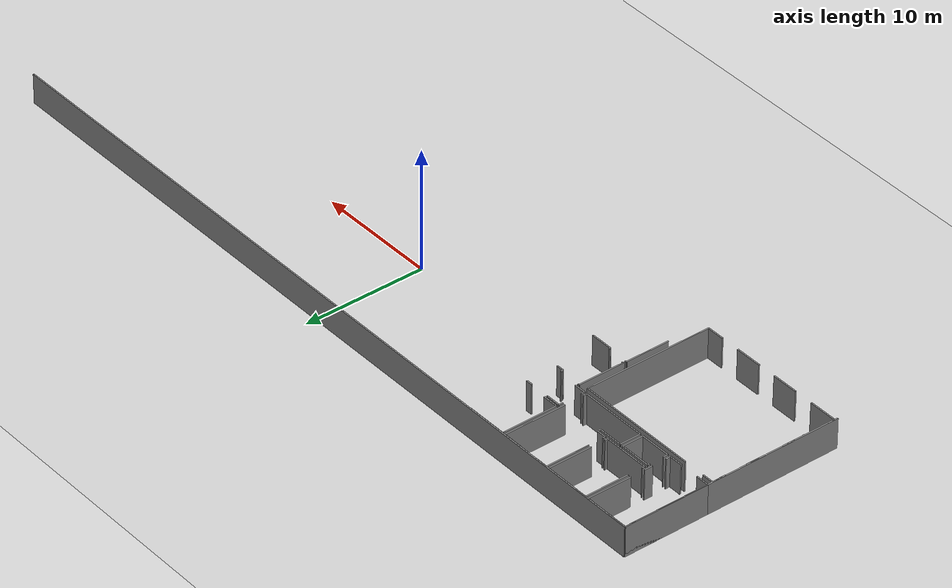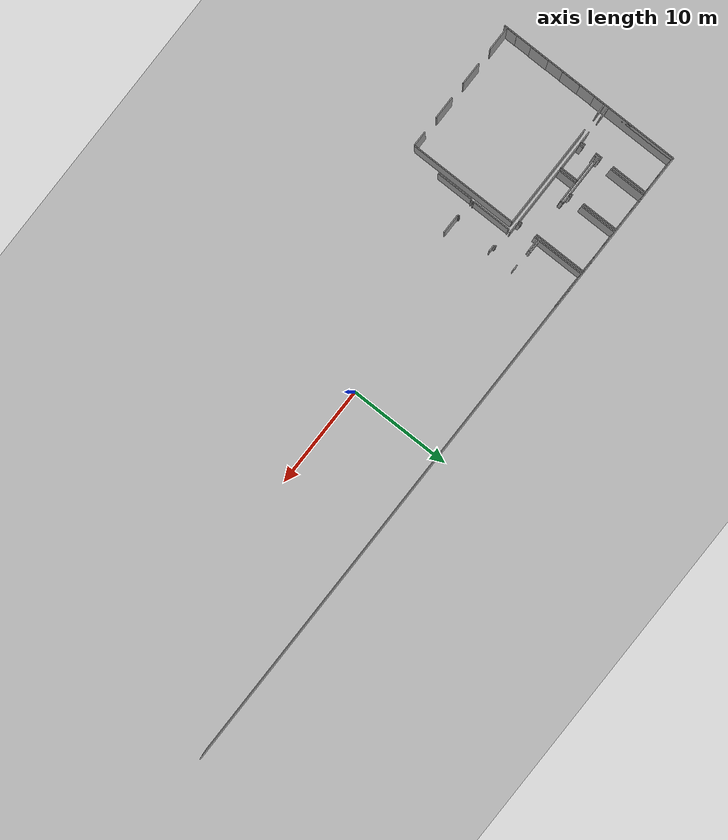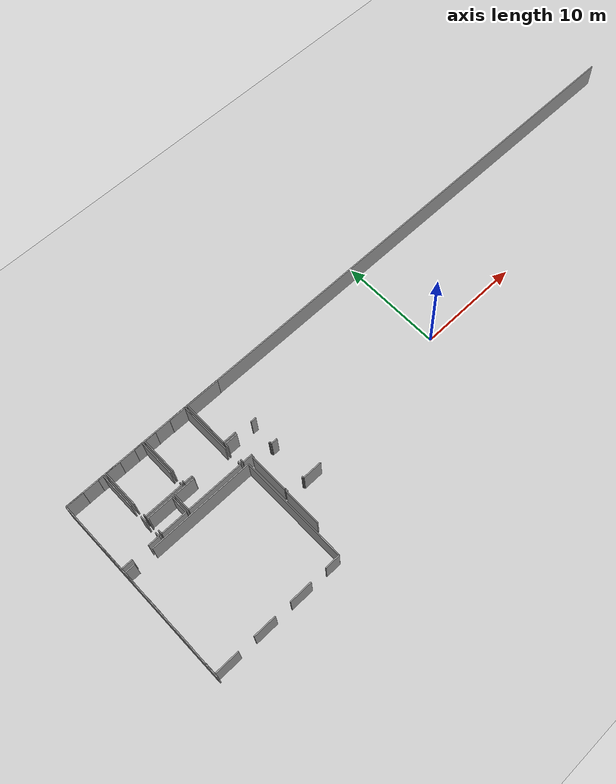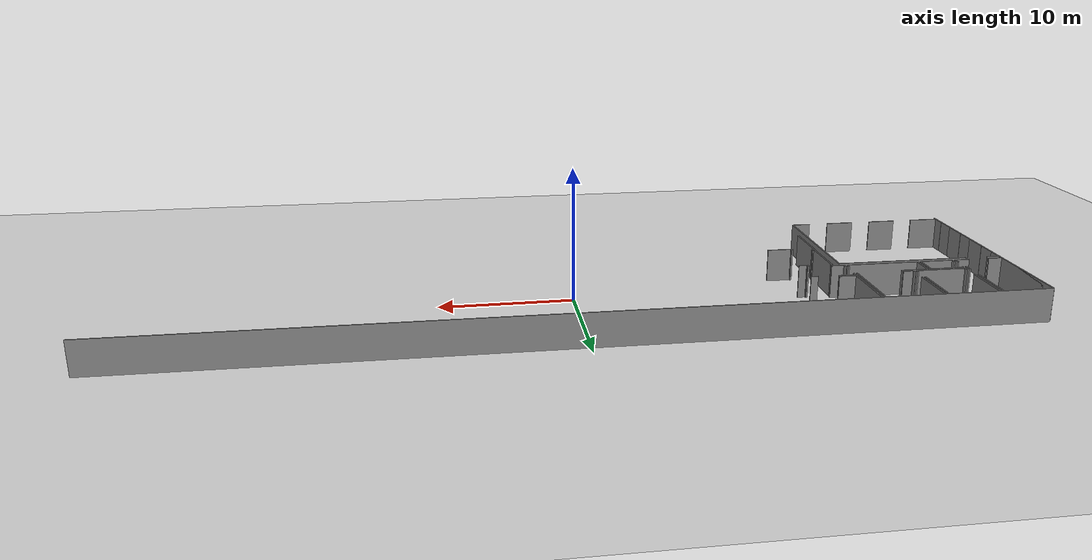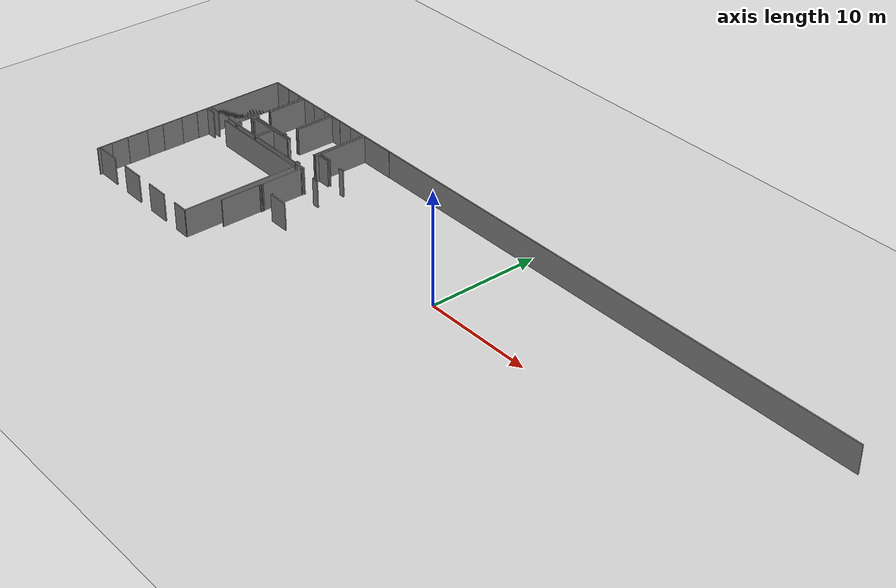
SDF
<sdf version="1.6">
 <world name="default">
  <model name="ground_plane">
   <static>1</static>
   <link name="link">
    <collision name="collision">
     <geometry><plane><normal>0 0 1</normal><size>100 100</size></plane></geometry>
     <surface><friction><ode><mu>100</mu><mu2>50</mu2></ode></friction></surface>
    </collision>
    <visual name="visual">
     <cast_shadows>0</cast_shadows>
     <geometry><plane><normal>0 0 1</normal><size>100 100</size></plane></geometry>
     <material>
      <script><uri>file://media/materials/scripts/gazebo.material</uri><name>Gazebo/Grey</name></script>
     </material>
    </visual>
   </link>
  </model>
  <model name="0510034839_A-40">
   <static>1</static>
   <link name="Wall_0">
    <collision name="Wall_0_Collision">
     <geometry><box><size>1.09109604692 0.1 2.5</size></box></geometry>
     <pose>0.54554802346 0 1.25 0 0 0</pose>
    </collision>
    <visual name="Wall_0_Visual">
     <pose>0.54554802346 0 1.25 0 0 0</pose>
     <geometry><box><size>1.09109604692 0.1 2.5</size></box></geometry>
     <material>
      <script><uri>file://media/materials/scripts/gazebo.material</uri><name>Gazebo/Grey</name></script>
      <ambient>1 1 1 1</ambient>
     </material>
    </visual>
    <pose>3.7589813898 -7.01970193211 0 0 0 3.14159265359</pose>
   </link>
   <link name="Wall_1">
    <collision name="Wall_1_Collision">
     <geometry><box><size>1.08144819357 0.1 2.5</size></box></geometry>
     <pose>0.540724096783 0 1.25 0 0 0</pose>
    </collision>
    <visual name="Wall_1_Visual">
     <pose>0.540724096783 0 1.25 0 0 0</pose>
     <geometry><box><size>1.08144819357 0.1 2.5</size></box></geometry>
     <material>
      <script><uri>file://media/materials/scripts/gazebo.material</uri><name>Gazebo/Grey</name></script>
      <ambient>1 1 1 1</ambient>
     </material>
    </visual>
    <pose>1.08144819357 -7.01970193211 0 0 0 3.14159265359</pose>
   </link>
   <link name="Wall_2">
    <collision name="Wall_2_Collision">
     <geometry><box><size>7.00865767893 0.1 2.5</size></box></geometry>
     <pose>3.50432883946 0 1.25 0 0 0</pose>
    </collision>
    <visual name="Wall_2_Visual">
     <pose>3.50432883946 0 1.25 0 0 0</pose>
     <geometry><box><size>7.00865767893 0.1 2.5</size></box></geometry>
     <material>
      <script><uri>file://media/materials/scripts/gazebo.material</uri><name>Gazebo/Grey</name></script>
      <ambient>1 1 1 1</ambient>
     </material>
    </visual>
    <pose>0.0 -7.01970193211 0 0 0 1.57079632679</pose>
   </link>
   <link name="Wall_3">
    <collision name="Wall_3_Collision">
     <geometry><box><size>1.69116713636 0.1 2.5</size></box></geometry>
     <pose>0.845583568182 0 1.25 0 0 0</pose>
    </collision>
    <visual name="Wall_3_Visual">
     <pose>0.845583568182 0 1.25 0 0 0</pose>
     <geometry><box><size>1.69116713636 0.1 2.5</size></box></geometry>
     <material>
      <script><uri>file://media/materials/scripts/gazebo.material</uri><name>Gazebo/Grey</name></script>
      <ambient>1 1 1 1</ambient>
     </material>
    </visual>
    <pose>0.0 -0.01104425318 0 0 0 0.0</pose>
   </link>
   <link name="Wall_4">
    <collision name="Wall_4_Collision">
     <geometry><box><size>0.53444029756 0.1 2.5</size></box></geometry>
     <pose>0.26722014878 0 1.25 0 0 0</pose>
    </collision>
    <visual name="Wall_4_Visual">
     <pose>0.26722014878 0 1.25 0 0 0</pose>
     <geometry><box><size>0.53444029756 0.1 2.5</size></box></geometry>
     <material>
      <script><uri>file://media/materials/scripts/gazebo.material</uri><name>Gazebo/Grey</name></script>
      <ambient>1 1 1 1</ambient>
     </material>
    </visual>
    <pose>3.19775560464 -0.01104425318 0 0 0 0.0</pose>
   </link>
   <link name="Wall_5">
    <collision name="Wall_5_Collision">
     <geometry><box><size>3.59141341052 0.1 2.5</size></box></geometry>
     <pose>1.79570670526 0 1.25 0 0 0</pose>
    </collision>
    <visual name="Wall_5_Visual">
     <pose>1.79570670526 0 1.25 0 0 0</pose>
     <geometry><box><size>3.59141341052 0.1 2.5</size></box></geometry>
     <material>
      <script><uri>file://media/materials/scripts/gazebo.material</uri><name>Gazebo/Grey</name></script>
      <ambient>1 1 1 1</ambient>
     </material>
    </visual>
    <pose>3.7321959022 -0.01104425318 0 0 0 -1.57079632679</pose>
   </link>
   <link name="Wall_6">
    <collision name="Wall_6_Collision">
     <geometry><box><size>0.691598750857 0.1 2.5</size></box></geometry>
     <pose>0.345799375428 0 1.25 0 0 0</pose>
    </collision>
    <visual name="Wall_6_Visual">
     <pose>0.345799375428 0 1.25 0 0 0</pose>
     <geometry><box><size>0.691598750857 0.1 2.5</size></box></geometry>
     <material>
      <script><uri>file://media/materials/scripts/gazebo.material</uri><name>Gazebo/Grey</name></script>
      <ambient>1 1 1 1</ambient>
     </material>
    </visual>
    <pose>3.7321959022 -4.76845151954 0 0 0 -1.57079632679</pose>
   </link>
   <link name="Wall_7">
    <collision name="Wall_7_Collision">
     <geometry><box><size>0.419015281077 0.1 2.5</size></box></geometry>
     <pose>0.209507640539 0 1.25 0 0 0</pose>
    </collision>
    <visual name="Wall_7_Visual">
     <pose>0.209507640539 0 1.25 0 0 0</pose>
     <geometry><box><size>0.419015281077 0.1 2.5</size></box></geometry>
     <material>
      <script><uri>file://media/materials/scripts/gazebo.material</uri><name>Gazebo/Grey</name></script>
      <ambient>1 1 1 1</ambient>
     </material>
    </visual>
    <pose>3.7321959022 -6.60154365654 0 0 0 -1.50682786293</pose>
   </link>
   <link name="Wall_8">
    <collision name="Wall_8_Collision">
     <geometry><box><size>3.77281844263 0.1 2.5</size></box></geometry>
     <pose>1.88640922132 0 1.25 0 0 0</pose>
    </collision>
    <visual name="Wall_8_Visual">
     <pose>1.88640922132 0 1.25 0 0 0</pose>
     <geometry><box><size>3.77281844263 0.1 2.5</size></box></geometry>
     <material>
      <script><uri>file://media/materials/scripts/gazebo.material</uri><name>Gazebo/Grey</name></script>
      <ambient>1 1 1 1</ambient>
     </material>
    </visual>
    <pose>7.77096503923 -5.0267854876 0 0 0 3.14159265359</pose>
   </link>
   <link name="Wall_9">
    <collision name="Wall_9_Collision">
     <geometry><box><size>0.233706552924 0.1 2.5</size></box></geometry>
     <pose>0.116853276462 0 1.25 0 0 0</pose>
    </collision>
    <visual name="Wall_9_Visual">
     <pose>0.116853276462 0 1.25 0 0 0</pose>
     <geometry><box><size>0.233706552924 0.1 2.5</size></box></geometry>
     <material>
      <script><uri>file://media/materials/scripts/gazebo.material</uri><name>Gazebo/Grey</name></script>
      <ambient>1 1 1 1</ambient>
     </material>
    </visual>
    <pose>3.99814659659 -5.0267854876 0 0 0 1.57079632679</pose>
   </link>
   <link name="Wall_10">
    <collision name="Wall_10_Collision">
     <geometry><box><size>3.62848147866 0.1 2.5</size></box></geometry>
     <pose>1.81424073933 0 1.25 0 0 0</pose>
    </collision>
    <visual name="Wall_10_Visual">
     <pose>1.81424073933 0 1.25 0 0 0</pose>
     <geometry><box><size>3.62848147866 0.1 2.5</size></box></geometry>
     <material>
      <script><uri>file://media/materials/scripts/gazebo.material</uri><name>Gazebo/Grey</name></script>
      <ambient>1 1 1 1</ambient>
     </material>
    </visual>
    <pose>3.99814659659 -3.63127427832 0 0 0 1.57079632679</pose>
   </link>
   <link name="Wall_11">
    <collision name="Wall_11_Collision">
     <geometry><box><size>1.40922131668 0.1 2.5</size></box></geometry>
     <pose>0.704610658339 0 1.25 0 0 0</pose>
    </collision>
    <visual name="Wall_11_Visual">
     <pose>0.704610658339 0 1.25 0 0 0</pose>
     <geometry><box><size>1.40922131668 0.1 2.5</size></box></geometry>
     <material>
      <script><uri>file://media/materials/scripts/gazebo.material</uri><name>Gazebo/Grey</name></script>
      <ambient>1 1 1 1</ambient>
     </material>
    </visual>
    <pose>3.99814659659 -0.00279279965471 0 0 0 0.0</pose>
   </link>
   <link name="Wall_12">
    <collision name="Wall_12_Collision">
     <geometry><box><size>0.842029095895 0.1 2.5</size></box></geometry>
     <pose>0.421014547947 0 1.25 0 0 0</pose>
    </collision>
    <visual name="Wall_12_Visual">
     <pose>0.421014547947 0 1.25 0 0 0</pose>
     <geometry><box><size>0.842029095895 0.1 2.5</size></box></geometry>
     <material>
      <script><uri>file://media/materials/scripts/gazebo.material</uri><name>Gazebo/Grey</name></script>
      <ambient>1 1 1 1</ambient>
     </material>
    </visual>
    <pose>6.91700307208 -0.00279279965471 0 0 0 0.0</pose>
   </link>
   <link name="Wall_13">
    <collision name="Wall_13_Collision">
     <geometry><box><size>3.63013176937 0.1 2.5</size></box></geometry>
     <pose>1.81506588468 0 1.25 0 0 0</pose>
    </collision>
    <visual name="Wall_13_Visual">
     <pose>1.81506588468 0 1.25 0 0 0</pose>
     <geometry><box><size>3.63013176937 0.1 2.5</size></box></geometry>
     <material>
      <script><uri>file://media/materials/scripts/gazebo.material</uri><name>Gazebo/Grey</name></script>
      <ambient>1 1 1 1</ambient>
     </material>
    </visual>
    <pose>7.75903216797 -0.00279279965471 0 0 0 -1.57079632679</pose>
   </link>
   <link name="Wall_14">
    <collision name="Wall_14_Collision">
     <geometry><box><size>0.258609420691 0.1 2.5</size></box></geometry>
     <pose>0.129304710346 0 1.25 0 0 0</pose>
    </collision>
    <visual name="Wall_14_Visual">
     <pose>0.129304710346 0 1.25 0 0 0</pose>
     <geometry><box><size>0.258609420691 0.1 2.5</size></box></geometry>
     <material>
      <script><uri>file://media/materials/scripts/gazebo.material</uri><name>Gazebo/Grey</name></script>
      <ambient>1 1 1 1</ambient>
     </material>
    </visual>
    <pose>7.75903216797 -4.76845151954 0 0 0 -1.52463749116</pose>
   </link>
   <link name="Wall_15">
    <collision name="Wall_15_Collision">
     <geometry><box><size>2.52304059715 0.1 2.5</size></box></geometry>
     <pose>1.26152029858 0 1.25 0 0 0</pose>
    </collision>
    <visual name="Wall_15_Visual">
     <pose>1.26152029858 0 1.25 0 0 0</pose>
     <geometry><box><size>2.52304059715 0.1 2.5</size></box></geometry>
     <material>
      <script><uri>file://media/materials/scripts/gazebo.material</uri><name>Gazebo/Grey</name></script>
      <ambient>1 1 1 1</ambient>
     </material>
    </visual>
    <pose>6.53730926448 -7.01259298753 0 0 0 3.14159265359</pose>
   </link>
   <link name="Wall_16">
    <collision name="Wall_16_Collision">
     <geometry><box><size>0.398354787113 0.1 2.5</size></box></geometry>
     <pose>0.199177393556 0 1.25 0 0 0</pose>
    </collision>
    <visual name="Wall_16_Visual">
     <pose>0.199177393556 0 1.25 0 0 0</pose>
     <geometry><box><size>0.398354787113 0.1 2.5</size></box></geometry>
     <material>
      <script><uri>file://media/materials/scripts/gazebo.material</uri><name>Gazebo/Grey</name></script>
      <ambient>1 1 1 1</ambient>
     </material>
    </visual>
    <pose>4.01426866733 -7.01259298753 0 0 0 1.57079632679</pose>
   </link>
   <link name="Wall_17">
    <collision name="Wall_17_Collision">
     <geometry><box><size>0.17010688806 0.1 2.5</size></box></geometry>
     <pose>0.0850534440298 0 1.25 0 0 0</pose>
    </collision>
    <visual name="Wall_17_Visual">
     <pose>0.0850534440298 0 1.25 0 0 0</pose>
     <geometry><box><size>0.17010688806 0.1 2.5</size></box></geometry>
     <material>
      <script><uri>file://media/materials/scripts/gazebo.material</uri><name>Gazebo/Grey</name></script>
      <ambient>1 1 1 1</ambient>
     </material>
    </visual>
    <pose>4.01426866733 -5.45446467108 0 0 0 1.57079632679</pose>
   </link>
   <link name="Wall_18">
    <collision name="Wall_18_Collision">
     <geometry><box><size>2.51643943433 0.1 2.5</size></box></geometry>
     <pose>1.25821971717 0 1.25 0 0 0</pose>
    </collision>
    <visual name="Wall_18_Visual">
     <pose>1.25821971717 0 1.25 0 0 0</pose>
     <geometry><box><size>2.51643943433 0.1 2.5</size></box></geometry>
     <material>
      <script><uri>file://media/materials/scripts/gazebo.material</uri><name>Gazebo/Grey</name></script>
      <ambient>1 1 1 1</ambient>
     </material>
    </visual>
    <pose>4.01426866733 -5.28435778302 0 0 0 0.0</pose>
   </link>
   <link name="Wall_19">
    <collision name="Wall_19_Collision">
     <geometry><box><size>1.72824781136 0.1 2.5</size></box></geometry>
     <pose>0.864123905678 0 1.25 0 0 0</pose>
    </collision>
    <visual name="Wall_19_Visual">
     <pose>0.864123905678 0 1.25 0 0 0</pose>
     <geometry><box><size>1.72824781136 0.1 2.5</size></box></geometry>
     <material>
      <script><uri>file://media/materials/scripts/gazebo.material</uri><name>Gazebo/Grey</name></script>
      <ambient>1 1 1 1</ambient>
     </material>
    </visual>
    <pose>6.53070810166 -5.28435778302 0 0 0 -1.5669767479</pose>
   </link>
   <link name="Wall_20">
    <collision name="Wall_20_Collision">
     <geometry><box><size>1.45162109325 0.1 2.5</size></box></geometry>
     <pose>0.725810546627 0 1.25 0 0 0</pose>
    </collision>
    <visual name="Wall_20_Visual">
     <pose>0.725810546627 0 1.25 0 0 0</pose>
     <geometry><box><size>1.45162109325 0.1 2.5</size></box></geometry>
     <material>
      <script><uri>file://media/materials/scripts/gazebo.material</uri><name>Gazebo/Grey</name></script>
      <ambient>1 1 1 1</ambient>
     </material>
    </visual>
    <pose>12.7597938406 -17.9983243202 0 0 0 3.14159265359</pose>
   </link>
   <link name="Wall_21">
    <collision name="Wall_21_Collision">
     <geometry><box><size>2.18092263945 0.1 2.5</size></box></geometry>
     <pose>1.09046131972 0 1.25 0 0 0</pose>
    </collision>
    <visual name="Wall_21_Visual">
     <pose>1.09046131972 0 1.25 0 0 0</pose>
     <geometry><box><size>2.18092263945 0.1 2.5</size></box></geometry>
     <material>
      <script><uri>file://media/materials/scripts/gazebo.material</uri><name>Gazebo/Grey</name></script>
      <ambient>1 1 1 1</ambient>
     </material>
    </visual>
    <pose>9.75969228426 -17.9983243202 0 0 0 3.14159265359</pose>
   </link>
   <link name="Wall_22">
    <collision name="Wall_22_Collision">
     <geometry><box><size>2.17432147663 0.1 2.5</size></box></geometry>
     <pose>1.08716073831 0 1.25 0 0 0</pose>
    </collision>
    <visual name="Wall_22_Visual">
     <pose>1.08716073831 0 1.25 0 0 0</pose>
     <geometry><box><size>2.17432147663 0.1 2.5</size></box></geometry>
     <material>
      <script><uri>file://media/materials/scripts/gazebo.material</uri><name>Gazebo/Grey</name></script>
      <ambient>1 1 1 1</ambient>
     </material>
    </visual>
    <pose>6.05161601544 -17.9983243202 0 0 0 3.14159265359</pose>
   </link>
   <link name="Wall_23">
    <collision name="Wall_23_Collision">
     <geometry><box><size>2.3238632036 0.1 2.5</size></box></geometry>
     <pose>1.1619316018 0 1.25 0 0 0</pose>
    </collision>
    <visual name="Wall_23_Visual">
     <pose>1.1619316018 0 1.25 0 0 0</pose>
     <geometry><box><size>2.3238632036 0.1 2.5</size></box></geometry>
     <material>
      <script><uri>file://media/materials/scripts/gazebo.material</uri><name>Gazebo/Grey</name></script>
      <ambient>1 1 1 1</ambient>
     </material>
    </visual>
    <pose>2.34176251047 -17.9983243202 0 0 0 3.14159265359</pose>
   </link>
   <link name="Wall_24">
    <collision name="Wall_24_Collision">
     <geometry><box><size>1.06761114073 0.1 2.5</size></box></geometry>
     <pose>0.533805570366 0 1.25 0 0 0</pose>
    </collision>
    <visual name="Wall_24_Visual">
     <pose>0.533805570366 0 1.25 0 0 0</pose>
     <geometry><box><size>1.06761114073 0.1 2.5</size></box></geometry>
     <material>
      <script><uri>file://media/materials/scripts/gazebo.material</uri><name>Gazebo/Grey</name></script>
      <ambient>1 1 1 1</ambient>
     </material>
    </visual>
    <pose>0.0178993068779 -17.9983243202 0 0 0 1.57079632679</pose>
   </link>
   <link name="Wall_25">
    <collision name="Wall_25_Collision">
     <geometry><box><size>1.8922487115 0.1 2.5</size></box></geometry>
     <pose>0.946124355752 0 1.25 0 0 0</pose>
    </collision>
    <visual name="Wall_25_Visual">
     <pose>0.946124355752 0 1.25 0 0 0</pose>
     <geometry><box><size>1.8922487115 0.1 2.5</size></box></geometry>
     <material>
      <script><uri>file://media/materials/scripts/gazebo.material</uri><name>Gazebo/Grey</name></script>
      <ambient>1 1 1 1</ambient>
     </material>
    </visual>
    <pose>0.0178993068779 -15.3911188971 0 0 0 1.57079632679</pose>
   </link>
   <link name="Wall_26">
    <collision name="Wall_26_Collision">
     <geometry><box><size>1.88742478483 0.1 2.5</size></box></geometry>
     <pose>0.943712392414 0 1.25 0 0 0</pose>
    </collision>
    <visual name="Wall_26_Visual">
     <pose>0.943712392414 0 1.25 0 0 0</pose>
     <geometry><box><size>1.88742478483 0.1 2.5</size></box></geometry>
     <material>
      <script><uri>file://media/materials/scripts/gazebo.material</uri><name>Gazebo/Grey</name></script>
      <ambient>1 1 1 1</ambient>
     </material>
    </visual>
    <pose>0.0178993068779 -11.9582603397 0 0 0 1.57079632679</pose>
   </link>
   <link name="Wall_27">
    <collision name="Wall_27_Collision">
     <geometry><box><size>1.0890649199 0.1 2.5</size></box></geometry>
     <pose>0.544532459949 0 1.25 0 0 0</pose>
    </collision>
    <visual name="Wall_27_Visual">
     <pose>0.544532459949 0 1.25 0 0 0</pose>
     <geometry><box><size>1.0890649199 0.1 2.5</size></box></geometry>
     <material>
      <script><uri>file://media/materials/scripts/gazebo.material</uri><name>Gazebo/Grey</name></script>
      <ambient>1 1 1 1</ambient>
     </material>
    </visual>
    <pose>0.0178993068779 -8.52489400056 0 0 0 1.57079632679</pose>
   </link>
   <link name="Wall_28">
    <collision name="Wall_28_Collision">
     <geometry><box><size>0.954502754716 0.1 2.5</size></box></geometry>
     <pose>0.477251377358 0 1.25 0 0 0</pose>
    </collision>
    <visual name="Wall_28_Visual">
     <pose>0.477251377358 0 1.25 0 0 0</pose>
     <geometry><box><size>0.954502754716 0.1 2.5</size></box></geometry>
     <material>
      <script><uri>file://media/materials/scripts/gazebo.material</uri><name>Gazebo/Grey</name></script>
      <ambient>1 1 1 1</ambient>
     </material>
    </visual>
    <pose>0.0178993068779 -7.43582908066 0 0 0 0.0</pose>
   </link>
   <link name="Wall_29">
    <collision name="Wall_29_Collision">
     <geometry><box><size>10.0184070886 0.1 2.5</size></box></geometry>
     <pose>5.00920354432 0 1.25 0 0 0</pose>
    </collision>
    <visual name="Wall_29_Visual">
     <pose>5.00920354432 0 1.25 0 0 0</pose>
     <geometry><box><size>10.0184070886 0.1 2.5</size></box></geometry>
     <material>
      <script><uri>file://media/materials/scripts/gazebo.material</uri><name>Gazebo/Grey</name></script>
      <ambient>1 1 1 1</ambient>
     </material>
    </visual>
    <pose>2.72907304441 -7.43582908066 0 0 0 0.0</pose>
   </link>
   <link name="Wall_30">
    <collision name="Wall_30_Collision">
     <geometry><box><size>10.5625024172 0.1 2.5</size></box></geometry>
     <pose>5.28125120859 0 1.25 0 0 0</pose>
    </collision>
    <visual name="Wall_30_Visual">
     <pose>5.28125120859 0 1.25 0 0 0</pose>
     <geometry><box><size>10.5625024172 0.1 2.5</size></box></geometry>
     <material>
      <script><uri>file://media/materials/scripts/gazebo.material</uri><name>Gazebo/Grey</name></script>
      <ambient>1 1 1 1</ambient>
     </material>
    </visual>
    <pose>12.747480133 -7.43582908066 0 0 0 -1.569630532</pose>
   </link>
   <link name="Wall_31">
    <collision name="Wall_31_Collision">
     <geometry><box><size>5.48455074009 0.1 2.5</size></box></geometry>
     <pose>2.74227537005 0 1.25 0 0 0</pose>
    </collision>
    <visual name="Wall_31_Visual">
     <pose>2.74227537005 0 1.25 0 0 0</pose>
     <geometry><box><size>5.48455074009 0.1 2.5</size></box></geometry>
     <material>
      <script><uri>file://media/materials/scripts/gazebo.material</uri><name>Gazebo/Grey</name></script>
      <ambient>1 1 1 1</ambient>
     </material>
    </visual>
    <pose>12.2738467007 -7.0101810242 0 0 0 3.14159265359</pose>
   </link>
   <link name="Wall_32">
    <collision name="Wall_32_Collision">
     <geometry><box><size>1.72937771346 0.1 2.5</size></box></geometry>
     <pose>0.864688856729 0 1.25 0 0 0</pose>
    </collision>
    <visual name="Wall_32_Visual">
     <pose>0.864688856729 0 1.25 0 0 0</pose>
     <geometry><box><size>1.72937771346 0.1 2.5</size></box></geometry>
     <material>
      <script><uri>file://media/materials/scripts/gazebo.material</uri><name>Gazebo/Grey</name></script>
      <ambient>1 1 1 1</ambient>
     </material>
    </visual>
    <pose>6.7892959606 -7.0101810242 0 0 0 1.57079632679</pose>
   </link>
   <link name="Wall_33">
    <collision name="Wall_33_Collision">
     <geometry><box><size>2.00066011628 0.1 2.5</size></box></geometry>
     <pose>1.00033005814 0 1.25 0 0 0</pose>
    </collision>
    <visual name="Wall_33_Visual">
     <pose>1.00033005814 0 1.25 0 0 0</pose>
     <geometry><box><size>2.00066011628 0.1 2.5</size></box></geometry>
     <material>
      <script><uri>file://media/materials/scripts/gazebo.material</uri><name>Gazebo/Grey</name></script>
      <ambient>1 1 1 1</ambient>
     </material>
    </visual>
    <pose>6.7892959606 -5.28080331074 0 0 0 0.0</pose>
   </link>
   <link name="Wall_34">
    <collision name="Wall_34_Collision">
     <geometry><box><size>0.252494477873 0.1 2.5</size></box></geometry>
     <pose>0.126247238937 0 1.25 0 0 0</pose>
    </collision>
    <visual name="Wall_34_Visual">
     <pose>0.126247238937 0 1.25 0 0 0</pose>
     <geometry><box><size>0.252494477873 0.1 2.5</size></box></geometry>
     <material>
      <script><uri>file://media/materials/scripts/gazebo.material</uri><name>Gazebo/Grey</name></script>
      <ambient>1 1 1 1</ambient>
     </material>
    </visual>
    <pose>8.78995607688 -5.28080331074 0 0 0 1.57079632679</pose>
   </link>
   <link name="Wall_35">
    <collision name="Wall_35_Collision">
     <geometry><box><size>0.788965902455 0.1 2.5</size></box></geometry>
     <pose>0.394482951228 0 1.25 0 0 0</pose>
    </collision>
    <visual name="Wall_35_Visual">
     <pose>0.394482951228 0 1.25 0 0 0</pose>
     <geometry><box><size>0.788965902455 0.1 2.5</size></box></geometry>
     <material>
      <script><uri>file://media/materials/scripts/gazebo.material</uri><name>Gazebo/Grey</name></script>
      <ambient>1 1 1 1</ambient>
     </material>
    </visual>
    <pose>8.78995607688 -5.02830883286 0 0 0 3.14159265359</pose>
   </link>
   <link name="Wall_36">
    <collision name="Wall_36_Collision">
     <geometry><box><size>0.227105390103 0.1 2.5</size></box></geometry>
     <pose>0.113552695052 0 1.25 0 0 0</pose>
    </collision>
    <visual name="Wall_36_Visual">
     <pose>0.113552695052 0 1.25 0 0 0</pose>
     <geometry><box><size>0.227105390103 0.1 2.5</size></box></geometry>
     <material>
      <script><uri>file://media/materials/scripts/gazebo.material</uri><name>Gazebo/Grey</name></script>
      <ambient>1 1 1 1</ambient>
     </material>
    </visual>
    <pose>8.00099017442 -5.02830883286 0 0 0 1.57079632679</pose>
   </link>
   <link name="Wall_37">
    <collision name="Wall_37_Collision">
     <geometry><box><size>3.60004570036 0.1 2.5</size></box></geometry>
     <pose>1.80002285018 0 1.25 0 0 0</pose>
    </collision>
    <visual name="Wall_37_Visual">
     <pose>1.80002285018 0 1.25 0 0 0</pose>
     <geometry><box><size>3.60004570036 0.1 2.5</size></box></geometry>
     <material>
      <script><uri>file://media/materials/scripts/gazebo.material</uri><name>Gazebo/Grey</name></script>
      <ambient>1 1 1 1</ambient>
     </material>
    </visual>
    <pose>8.00099017442 -3.61832584355 0 0 0 1.57079632679</pose>
   </link>
   <link name="Wall_38">
    <collision name="Wall_38_Collision">
     <geometry><box><size>1.1152156803 0.1 2.5</size></box></geometry>
     <pose>0.55760784015 0 1.25 0 0 0</pose>
    </collision>
    <visual name="Wall_38_Visual">
     <pose>0.55760784015 0 1.25 0 0 0</pose>
     <geometry><box><size>1.1152156803 0.1 2.5</size></box></geometry>
     <material>
      <script><uri>file://media/materials/scripts/gazebo.material</uri><name>Gazebo/Grey</name></script>
      <ambient>1 1 1 1</ambient>
     </material>
    </visual>
    <pose>8.00099017442 -0.0182801431945 0 0 0 0.0</pose>
   </link>
   <link name="Wall_39">
    <collision name="Wall_39_Collision">
     <geometry><box><size>1.6560032498 0.1 2.5</size></box></geometry>
     <pose>0.828001624902 0 1.25 0 0 0</pose>
    </collision>
    <visual name="Wall_39_Visual">
     <pose>0.828001624902 0 1.25 0 0 0</pose>
     <geometry><box><size>1.6560032498 0.1 2.5</size></box></geometry>
     <material>
      <script><uri>file://media/materials/scripts/gazebo.material</uri><name>Gazebo/Grey</name></script>
      <ambient>1 1 1 1</ambient>
     </material>
    </visual>
    <pose>10.6330769035 -0.0182801431945 0 0 0 0.0</pose>
   </link>
   <link name="Wall_40">
    <collision name="Wall_40_Collision">
     <geometry><box><size>5.12427958463 0.1 2.5</size></box></geometry>
     <pose>2.56213979232 0 1.25 0 0 0</pose>
    </collision>
    <visual name="Wall_40_Visual">
     <pose>2.56213979232 0 1.25 0 0 0</pose>
     <geometry><box><size>5.12427958463 0.1 2.5</size></box></geometry>
     <material>
      <script><uri>file://media/materials/scripts/gazebo.material</uri><name>Gazebo/Grey</name></script>
      <ambient>1 1 1 1</ambient>
     </material>
    </visual>
    <pose>12.2890801534 -0.0182801431945 0 0 0 -1.57079632679</pose>
   </link>
   <link name="Wall_41">
    <collision name="Wall_41_Collision">
     <geometry><box><size>0.321152616837 0.1 2.5</size></box></geometry>
     <pose>0.160576308418 0 1.25 0 0 0</pose>
    </collision>
    <visual name="Wall_41_Visual">
     <pose>0.160576308418 0 1.25 0 0 0</pose>
     <geometry><box><size>0.321152616837 0.1 2.5</size></box></geometry>
     <material>
      <script><uri>file://media/materials/scripts/gazebo.material</uri><name>Gazebo/Grey</name></script>
      <ambient>1 1 1 1</ambient>
     </material>
    </visual>
    <pose>12.2890801534 -6.68938990022 0 0 0 -1.61824781896</pose>
   </link>
   <link name="Wall_43">
    <collision name="Wall_43_Collision">
     <geometry><box><size>1.28240282327 0.1 2.5</size></box></geometry>
     <pose>0.641201411633 0 1.25 0 0 0</pose>
    </collision>
    <visual name="Wall_43_Visual">
     <pose>0.641201411633 0 1.25 0 0 0</pose>
     <geometry><box><size>1.28240282327 0.1 2.5</size></box></geometry>
     <material>
      <script><uri>file://media/materials/scripts/gazebo.material</uri><name>Gazebo/Grey</name></script>
      <ambient>1 1 1 1</ambient>
     </material>
    </visual>
    <pose>13.8204229822 -4.62436844644 0 0 0 3.14159265359</pose>
   </link>
   <link name="Wall_44">
    <collision name="Wall_44_Collision">
     <geometry><box><size>4.60101048569 0.1 2.5</size></box></geometry>
     <pose>2.30050524285 0 1.25 0 0 0</pose>
    </collision>
    <visual name="Wall_44_Visual">
     <pose>2.30050524285 0 1.25 0 0 0</pose>
     <geometry><box><size>4.60101048569 0.1 2.5</size></box></geometry>
     <material>
      <script><uri>file://media/materials/scripts/gazebo.material</uri><name>Gazebo/Grey</name></script>
      <ambient>1 1 1 1</ambient>
     </material>
    </visual>
    <pose>12.5380201589 -4.62436844644 0 0 0 1.57079632679</pose>
   </link>
   <link name="Wall_45">
    <collision name="Wall_45_Collision">
     <geometry><box><size>3.308071191 0.1 2.5</size></box></geometry>
     <pose>1.6540355955 0 1.25 0 0 0</pose>
    </collision>
    <visual name="Wall_45_Visual">
     <pose>1.6540355955 0 1.25 0 0 0</pose>
     <geometry><box><size>3.308071191 0.1 2.5</size></box></geometry>
     <material>
      <script><uri>file://media/materials/scripts/gazebo.material</uri><name>Gazebo/Grey</name></script>
      <ambient>1 1 1 1</ambient>
     </material>
    </visual>
    <pose>12.5380201589 -0.0233579607485 0 0 0 0.0</pose>
   </link>
   <link name="Wall_48">
    <collision name="Wall_48_Collision">
     <geometry><box><size>0.968212862112 0.1 2.5</size></box></geometry>
     <pose>0.484106431056 0 1.25 0 0 0</pose>
    </collision>
    <visual name="Wall_48_Visual">
     <pose>0.484106431056 0 1.25 0 0 0</pose>
     <geometry><box><size>0.968212862112 0.1 2.5</size></box></geometry>
     <material>
      <script><uri>file://media/materials/scripts/gazebo.material</uri><name>Gazebo/Grey</name></script>
      <ambient>1 1 1 1</ambient>
     </material>
    </visual>
    <pose>13.5052174575 -7.02059055018 0 0 0 3.14159265359</pose>
   </link>
   <link name="Wall_49">
    <collision name="Wall_49_Collision">
     <geometry><box><size>0.303780435169 0.1 2.5</size></box></geometry>
     <pose>0.151890217584 0 1.25 0 0 0</pose>
    </collision>
    <visual name="Wall_49_Visual">
     <pose>0.151890217584 0 1.25 0 0 0</pose>
     <geometry><box><size>0.303780435169 0.1 2.5</size></box></geometry>
     <material>
      <script><uri>file://media/materials/scripts/gazebo.material</uri><name>Gazebo/Grey</name></script>
      <ambient>1 1 1 1</ambient>
     </material>
    </visual>
    <pose>12.5370045954 -7.02059055018 0 0 0 1.57079632679</pose>
   </link>
   <link name="Wall_50">
    <collision name="Wall_50_Collision">
     <geometry><box><size>0.335897631198 0.1 2.5</size></box></geometry>
     <pose>0.167948815599 0 1.25 0 0 0</pose>
    </collision>
    <visual name="Wall_50_Visual">
     <pose>0.167948815599 0 1.25 0 0 0</pose>
     <geometry><box><size>0.335897631198 0.1 2.5</size></box></geometry>
     <material>
      <script><uri>file://media/materials/scripts/gazebo.material</uri><name>Gazebo/Grey</name></script>
      <ambient>1 1 1 1</ambient>
     </material>
    </visual>
    <pose>12.5370045954 -5.15741234417 0 0 0 1.57079632679</pose>
   </link>
   <link name="Wall_51">
    <collision name="Wall_51_Collision">
     <geometry><box><size>1.2433036281 0.1 2.5</size></box></geometry>
     <pose>0.62165181405 0 1.25 0 0 0</pose>
    </collision>
    <visual name="Wall_51_Visual">
     <pose>0.62165181405 0 1.25 0 0 0</pose>
     <geometry><box><size>1.2433036281 0.1 2.5</size></box></geometry>
     <material>
      <script><uri>file://media/materials/scripts/gazebo.material</uri><name>Gazebo/Grey</name></script>
      <ambient>1 1 1 1</ambient>
     </material>
    </visual>
    <pose>12.5370045954 -4.82151471298 0 0 0 0.0</pose>
   </link>
   <link name="Wall_52">
    <collision name="Wall_52_Collision">
     <geometry><box><size>0.527966080179 0.1 2.5</size></box></geometry>
     <pose>0.263983040089 0 1.25 0 0 0</pose>
    </collision>
    <visual name="Wall_52_Visual">
     <pose>0.263983040089 0 1.25 0 0 0</pose>
     <geometry><box><size>0.527966080179 0.1 2.5</size></box></geometry>
     <material>
      <script><uri>file://media/materials/scripts/gazebo.material</uri><name>Gazebo/Grey</name></script>
      <ambient>1 1 1 1</ambient>
     </material>
    </visual>
    <pose>15.3449107574 -4.82151471298 0 0 0 0.0</pose>
   </link>
   <link name="Wall_55">
    <collision name="Wall_55_Collision">
     <geometry><box><size>0.114631731282 0.1 2.5</size></box></geometry>
     <pose>0.0573158656409 0 1.25 0 0 0</pose>
    </collision>
    <visual name="Wall_55_Visual">
     <pose>0.0573158656409 0 1.25 0 0 0</pose>
     <geometry><box><size>0.114631731282 0.1 2.5</size></box></geometry>
     <material>
      <script><uri>file://media/materials/scripts/gazebo.material</uri><name>Gazebo/Grey</name></script>
      <ambient>1 1 1 1</ambient>
     </material>
    </visual>
    <pose>13.5012821489 -11.0895727017 0 0 0 3.14159265359</pose>
   </link>
   <link name="Wall_56">
    <collision name="Wall_56_Collision">
     <geometry><box><size>3.83921090715 0.1 2.5</size></box></geometry>
     <pose>1.91960545358 0 1.25 0 0 0</pose>
    </collision>
    <visual name="Wall_56_Visual">
     <pose>1.91960545358 0 1.25 0 0 0</pose>
     <geometry><box><size>3.83921090715 0.1 2.5</size></box></geometry>
     <material>
      <script><uri>file://media/materials/scripts/gazebo.material</uri><name>Gazebo/Grey</name></script>
      <ambient>1 1 1 1</ambient>
     </material>
    </visual>
    <pose>13.3866504177 -11.0895727017 0 0 0 1.57079632679</pose>
   </link>
   <link name="Wall_57">
    <collision name="Wall_57_Collision">
     <geometry><box><size>0.100286896692 0.1 2.5</size></box></geometry>
     <pose>0.0501434483459 0 1.25 0 0 0</pose>
    </collision>
    <visual name="Wall_57_Visual">
     <pose>0.0501434483459 0 1.25 0 0 0</pose>
     <geometry><box><size>0.100286896692 0.1 2.5</size></box></geometry>
     <material>
      <script><uri>file://media/materials/scripts/gazebo.material</uri><name>Gazebo/Grey</name></script>
      <ambient>1 1 1 1</ambient>
     </material>
    </visual>
    <pose>13.3866504177 -7.2503617945 0 0 0 0.0</pose>
   </link>
   <link name="Wall_58">
    <collision name="Wall_58_Collision">
     <geometry><box><size>0.109807804606 0.1 2.5</size></box></geometry>
     <pose>0.0549039023028 0 1.25 0 0 0</pose>
    </collision>
    <visual name="Wall_58_Visual">
     <pose>0.0549039023028 0 1.25 0 0 0</pose>
     <geometry><box><size>0.109807804606 0.1 2.5</size></box></geometry>
     <material>
      <script><uri>file://media/materials/scripts/gazebo.material</uri><name>Gazebo/Grey</name></script>
      <ambient>1 1 1 1</ambient>
     </material>
    </visual>
    <pose>15.1524614721 -7.2503617945 0 0 0 0.0</pose>
   </link>
   <link name="Wall_59">
    <collision name="Wall_59_Collision">
     <geometry><box><size>0.176581105441 0.1 2.5</size></box></geometry>
     <pose>0.0882905527204 0 1.25 0 0 0</pose>
    </collision>
    <visual name="Wall_59_Visual">
     <pose>0.0882905527204 0 1.25 0 0 0</pose>
     <geometry><box><size>0.176581105441 0.1 2.5</size></box></geometry>
     <material>
      <script><uri>file://media/materials/scripts/gazebo.material</uri><name>Gazebo/Grey</name></script>
      <ambient>1 1 1 1</ambient>
     </material>
    </visual>
    <pose>15.2622692767 -7.2503617945 0 0 0 -1.57079632679</pose>
   </link>
   <link name="Wall_60">
    <collision name="Wall_60_Collision">
     <geometry><box><size>0.610861451748 0.1 2.5</size></box></geometry>
     <pose>0.305430725874 0 1.25 0 0 0</pose>
    </collision>
    <visual name="Wall_60_Visual">
     <pose>0.305430725874 0 1.25 0 0 0</pose>
     <geometry><box><size>0.610861451748 0.1 2.5</size></box></geometry>
     <material>
      <script><uri>file://media/materials/scripts/gazebo.material</uri><name>Gazebo/Grey</name></script>
      <ambient>1 1 1 1</ambient>
     </material>
    </visual>
    <pose>15.2622692767 -7.42694289994 0 0 0 0.0</pose>
   </link>
   <link name="Wall_65">
    <collision name="Wall_65_Collision">
     <geometry><box><size>3.63178206007 0.1 2.5</size></box></geometry>
     <pose>1.81589103004 0 1.25 0 0 0</pose>
    </collision>
    <visual name="Wall_65_Visual">
     <pose>1.81589103004 0 1.25 0 0 0</pose>
     <geometry><box><size>3.63178206007 0.1 2.5</size></box></geometry>
     <material>
      <script><uri>file://media/materials/scripts/gazebo.material</uri><name>Gazebo/Grey</name></script>
      <ambient>1 1 1 1</ambient>
     </material>
    </visual>
    <pose>13.3434889684 -14.9464290248 0 0 0 1.57079632679</pose>
   </link>
   <link name="Wall_66">
    <collision name="Wall_66_Collision">
     <geometry><box><size>0.148526163455 0.1 2.5</size></box></geometry>
     <pose>0.0742630817275 0 1.25 0 0 0</pose>
    </collision>
    <visual name="Wall_66_Visual">
     <pose>0.0742630817275 0 1.25 0 0 0</pose>
     <geometry><box><size>0.148526163455 0.1 2.5</size></box></geometry>
     <material>
      <script><uri>file://media/materials/scripts/gazebo.material</uri><name>Gazebo/Grey</name></script>
      <ambient>1 1 1 1</ambient>
     </material>
    </visual>
    <pose>13.3434889684 -11.3146469647 0 0 0 0.0</pose>
   </link>
   <link name="Wall_67">
    <collision name="Wall_67_Collision">
     <geometry><box><size>0.104603041613 0.1 2.5</size></box></geometry>
     <pose>0.0523015208064 0 1.25 0 0 0</pose>
    </collision>
    <visual name="Wall_67_Visual">
     <pose>0.0523015208064 0 1.25 0 0 0</pose>
     <geometry><box><size>0.104603041613 0.1 2.5</size></box></geometry>
     <material>
      <script><uri>file://media/materials/scripts/gazebo.material</uri><name>Gazebo/Grey</name></script>
      <ambient>1 1 1 1</ambient>
     </material>
    </visual>
    <pose>15.039353086 -11.3146469647 0 0 0 0.0</pose>
   </link>
   <link name="Wall_68">
    <collision name="Wall_68_Collision">
     <geometry><box><size>0.120471221469 0.1 2.5</size></box></geometry>
     <pose>0.0602356107345 0 1.25 0 0 0</pose>
    </collision>
    <visual name="Wall_68_Visual">
     <pose>0.0602356107345 0 1.25 0 0 0</pose>
     <geometry><box><size>0.120471221469 0.1 2.5</size></box></geometry>
     <material>
      <script><uri>file://media/materials/scripts/gazebo.material</uri><name>Gazebo/Grey</name></script>
      <ambient>1 1 1 1</ambient>
     </material>
    </visual>
    <pose>15.1439561277 -11.3146469647 0 0 0 -1.57079632679</pose>
   </link>
   <link name="Wall_69">
    <collision name="Wall_69_Collision">
     <geometry><box><size>1.84731002615 0.1 2.5</size></box></geometry>
     <pose>0.923655013075 0 1.25 0 0 0</pose>
    </collision>
    <visual name="Wall_69_Visual">
     <pose>0.923655013075 0 1.25 0 0 0</pose>
     <geometry><box><size>1.84731002615 0.1 2.5</size></box></geometry>
     <material>
      <script><uri>file://media/materials/scripts/gazebo.material</uri><name>Gazebo/Grey</name></script>
      <ambient>1 1 1 1</ambient>
     </material>
    </visual>
    <pose>15.1439561277 -11.4351181862 0 0 0 0.0</pose>
   </link>
   <link name="Wall_247">
    <collision name="Wall_247_Collision">
     <geometry><box><size>18.2791276309 0.1 2.5</size></box></geometry>
     <pose>9.13956381547 0 1.25 0 0 0</pose>
    </collision>
    <visual name="Wall_247_Visual">
     <pose>9.13956381547 0 1.25 0 0 0</pose>
     <geometry><box><size>18.2791276309 0.1 2.5</size></box></geometry>
     <material>
      <script><uri>file://media/materials/scripts/gazebo.material</uri><name>Gazebo/Grey</name></script>
      <ambient>1 1 1 1</ambient>
     </material>
    </visual>
    <pose>0.0 -18.2791276309 0 0 0 1.57079632679</pose>
   </link>
   <link name="Wall_248">
    <collision name="Wall_248_Collision">
     <geometry><box><size>65.0379566862 0.1 2.5</size></box></geometry>
     <pose>32.5189783431 0 1.25 0 0 0</pose>
    </collision>
    <visual name="Wall_248_Visual">
     <pose>32.5189783431 0 1.25 0 0 0</pose>
     <geometry><box><size>65.0379566862 0.1 2.5</size></box></geometry>
     <material>
      <script><uri>file://media/materials/scripts/gazebo.material</uri><name>Gazebo/Grey</name></script>
      <ambient>1 1 1 1</ambient>
     </material>
    </visual>
   </link>
   <pose>-32.5 9.12912763094 0 0 0 0</pose>
  </model>
 </world>
</sdf>
